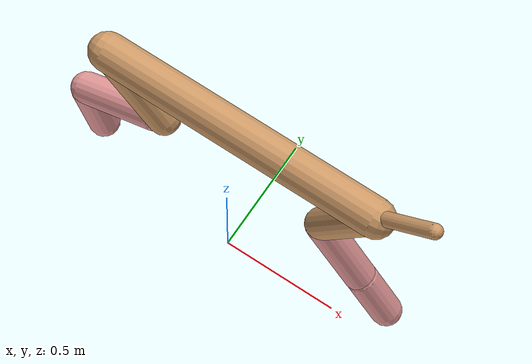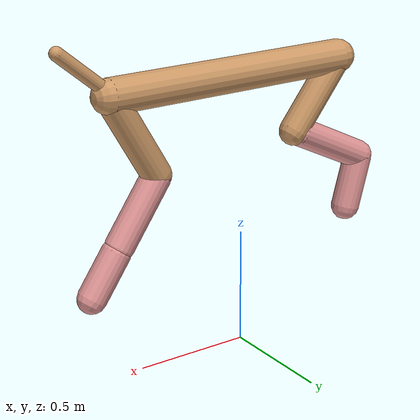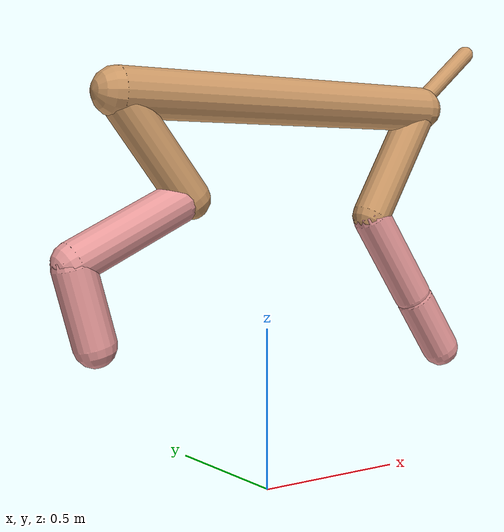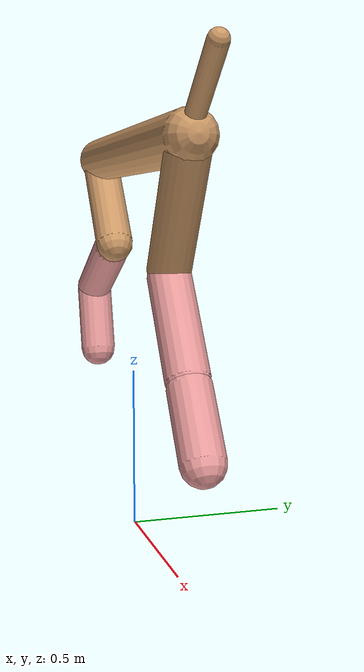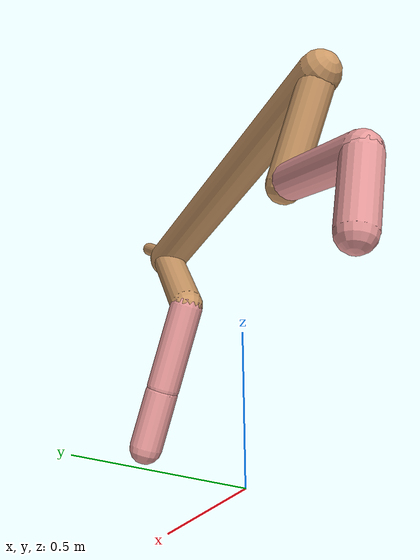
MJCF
<mujoco model="cheetah">
  <compiler angle="radian" coordinate="local" inertiafromgeom="true" settotalmass="14" />
  <default>
    <joint armature=".1" damping=".01" limited="true" solimplimit="0 .8 .03" solreflimit=".02 1" stiffness="8" />
    <geom conaffinity="0" condim="3" contype="1" friction="0.8 .1 .1" rgba="0.8 0.6 .4 1" solimp="0.0 0.8 0.01" solref="0.02 1" />
    <motor ctrllimited="true" ctrlrange="-1 1" />
  </default>
  <size nstack="300000" nuser_geom="1" />
  <option gravity="0 0 -9.81" timestep="0.01" />
  <worldbody>
    <body name="torso" pos="0.0 0.0 1.1939816392219336">
      <joint armature="0" axis="1 0 0" damping="0" limited="false" name="ignorex" pos="0 0 0" stiffness="0" type="slide" />
      <joint armature="0" axis="0 0 1" damping="0" limited="false" name="ignorez" pos="0 0 0" stiffness="0" type="slide" />
      <joint armature="0" axis="0 1 0" damping="0" limited="false" name="ignorey" pos="0 0 0" stiffness="0" type="hinge" />
      <geom fromto="-0.5 0.0 0.0 0.6179954120925961 0.0 0.0" name="torso" size="0.07316097654643856" type="capsule" />
      <geom axisangle="0 1 0 .87" name="head" pos="0.7179954120925961 0.0 0.1" size="0.028410371209164346 0.15" type="capsule" />

      <body name="bthigh" pos="-.5 0 0">
        <joint axis="0 1 0" damping="6" name="bthigh" pos="0 0 0" range="-.52 1.05" stiffness="240" type="hinge" />
        <geom axisangle="0 1 0 -3.8" name="bthigh" pos="0.11942647336915069 0.0 -0.1552544153798959" size="0.062404088863147446 0.17686178531944877" type="capsule" />
        <body name="bshin" pos="0.19885294673830137 0.0 -0.3005088307597918">
          <joint axis="0 1 0" damping="4.5" name="bshin" pos="0 0 0" range="-.785 .785" stiffness="180" type="hinge" />
          <geom axisangle="0 1 0 -2.03" name="bshin" pos="-0.16948073842432787 0.0 -0.08474036921216394" rgba="0.9 0.6 0.6 1" size="0.062404088863147446 0.18296046757184356" type="capsule" />
          <body name="bfoot" pos="-0.33896147684865574 0.0 -0.16948073842432787">
            <joint axis="0 1 0" damping="3" name="bfoot" pos="0 0 0" range="-.4 .785" stiffness="120" type="hinge" />
            <geom axisangle="0 1 0 -.27" name="bfoot" pos="0.03610299400505623 0.0 -0.11673301394968183" rgba="0.9 0.6 0.6 1" size="0.062404088863147446 0.11465522634502197" type="capsule" />
            <inertial mass="10" />
          </body>
        </body>
      </body>
      <body name="fthigh" pos="0.6179954120925961 0.0 0.0">
        <joint axis="0 1 0" damping="4.5" name="fthigh" pos="0 0 0" range="-1.5 0.8" stiffness="180" type="hinge" />
        <geom axisangle="0 1 0 .52" name="fthigh" pos="-0.10462772350864197 0.0 -0.17936181172910048" size="0.06198889697268117 0.2017233870465661" type="capsule" />
        <body name="fshin" pos="-0.20925544701728394 0.0 -0.35872362345820097">
          <joint axis="0 1 0" damping="3" name="fshin" pos="0 0 0" range="-1.2 1.1" stiffness="120" type="hinge" />
          <geom axisangle="0 1 0 -.6" name="fshin" pos="0.09706850194029432 0.0 -0.1344025411480998" rgba="0.9 0.6 0.6 1" size="0.06198889697268117 0.16077202275891733" type="capsule" />
          <body name="ffoot" pos="0.19413700388058863 0.0 -0.2688050822961996">
            <joint axis="0 1 0" damping="1.5" name="ffoot" pos="0 0 0" range="-3.1 -0.3" stiffness="60" type="hinge" />
            <geom axisangle="0 1 0 -.6" name="ffoot" pos="0.06455931223484546 0.0 -0.10042559680975961" rgba="0.9 0.6 0.6 1" size="0.06198889697268117 0.106170203708719" type="capsule" />
            <inertial mass="10" />
          </body>
        </body>
      </body>
    </body>
  </worldbody>
  <actuator>
    <motor gear="120" joint="bthigh" name="bthigh" />
    <motor gear="90" joint="bshin" name="bshin" />
    <motor gear="60" joint="bfoot" name="bfoot" />
    <motor gear="120" joint="fthigh" name="fthigh" />
    <motor gear="60" joint="fshin" name="fshin" />
    <motor gear="30" joint="ffoot" name="ffoot" />
  </actuator>
</mujoco>
